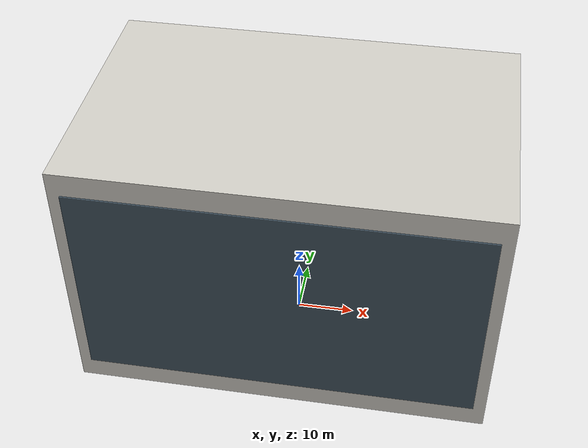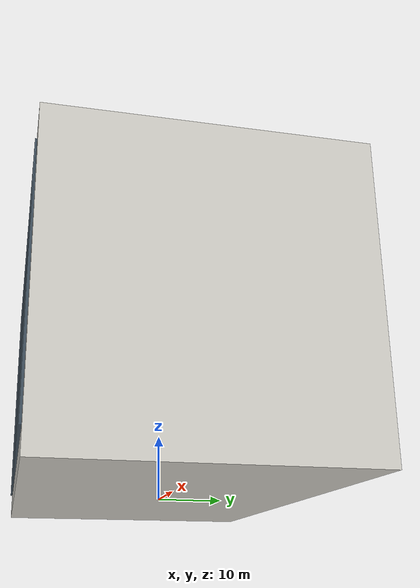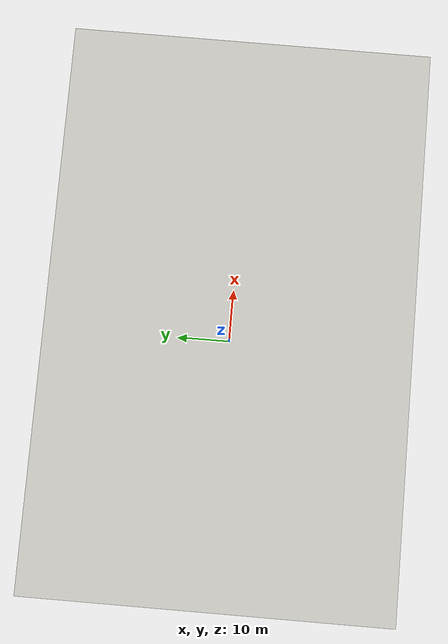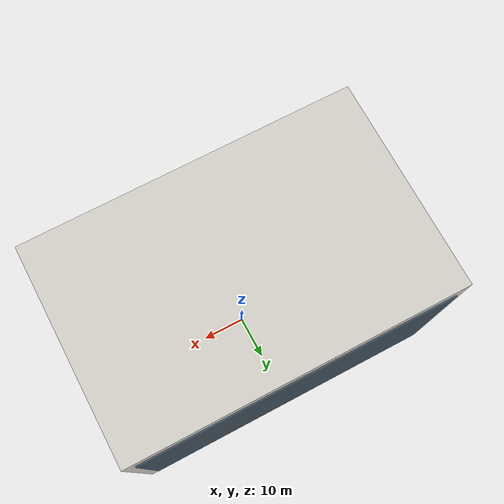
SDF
<?xml version="1.0" ?>
<sdf version="1.8">
  <model name="nikko_garden_block_south">
    <static>true</static>
    <link name="garden_link">
      <collision name="col"><pose>0 0 22.5 0 0 0</pose><geometry><box><size>70.0 45.0 45.0</size></box></geometry></collision>
      <visual name="main_vis"><pose>0 0 22.5 0 0 0</pose><geometry><box><size>70.0 45.0 45.0</size></box></geometry><material><ambient>0.74 0.73 0.70 1</ambient><diffuse>0.80 0.79 0.76 1</diffuse></material></visual>
      <visual name="balconies"><pose>0 0 22.5 0 0 0</pose><geometry><box><size>66.0 45.6 37.0</size></box></geometry><material><ambient>0.20 0.25 0.30 0.88</ambient><diffuse>0.25 0.32 0.38 0.88</diffuse></material></visual>
    </link>
  </model>
</sdf>
